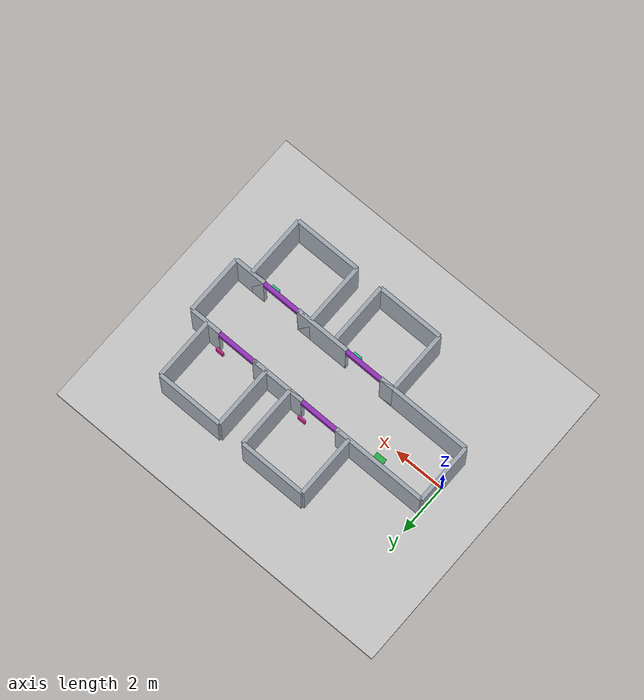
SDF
<sdf version="1.9">
  <world name="default">
    <plugin filename="gz-sim-physics-system" name="gz::sim::systems::Physics" />
    <plugin filename="gz-sim-user-commands-system" name="gz::sim::systems::UserCommands" />
    <plugin filename="gz-sim-sensors-system" name="gz::sim::systems::Sensors">
      <render_engine>ogre2</render_engine>
    </plugin>
    <plugin filename="gz-sim-imu-system" name="gz::sim::systems::Imu" />
    <plugin filename="gz-sim-contact-system" name="gz::sim::systems::Contact" />
    <physics name="3ms" type="ode">
      <max_step_size>0.003</max_step_size>
      <real_time_factor>1</real_time_factor>
    </physics>
    <light name="sun" type="directional">
      <pose>0 0 10 0 0 0</pose>
      <diffuse>0.9 0.9 0.9 1</diffuse>
      <direction>-0.5 0.1 -0.9</direction>
    </light>
    <model name="ground_plane">
      <static>true</static>
      <pose>5.05 0 -0.05 0 0 0</pose>
      <link name="body">
        <collision name="collision">
          <geometry>
            <box>
              <size>14.1 12 0.1</size>
            </box>
          </geometry>
        </collision>
        <visual name="visual">
          <geometry>
            <box>
              <size>14.1 12 0.1</size>
            </box>
          </geometry>
          <material>
            <ambient>0.8 0.8 0.8 1</ambient>
            <diffuse>0.8 0.8 0.8 1</diffuse>
          </material>
        </visual>
      </link>
    </model>
    <model name="start_wall">
      <static>true</static>
      <pose>0 0 1.1 0 0 0</pose>
      <link name="body">
        <collision name="collision">
          <geometry>
            <box>
              <size>0.15 2.3 2.2</size>
            </box>
          </geometry>
        </collision>
        <visual name="visual">
          <geometry>
            <box>
              <size>0.15 2.3 2.2</size>
            </box>
          </geometry>
          <material>
            <ambient>0.65 0.68 0.72 1</ambient>
            <diffuse>0.65 0.68 0.72 1</diffuse>
          </material>
        </visual>
      </link>
    </model>
    <model name="end_wall">
      <static>true</static>
      <pose>10.1 0 1.1 0 0 0</pose>
      <link name="body">
        <collision name="collision">
          <geometry>
            <box>
              <size>0.15 2.3 2.2</size>
            </box>
          </geometry>
        </collision>
        <visual name="visual">
          <geometry>
            <box>
              <size>0.15 2.3 2.2</size>
            </box>
          </geometry>
          <material>
            <ambient>0.65 0.68 0.72 1</ambient>
            <diffuse>0.65 0.68 0.72 1</diffuse>
          </material>
        </visual>
      </link>
    </model>
    <model name="hall_-1_1">
      <static>true</static>
      <pose>1.85 -1.15 1.1 0 0 0</pose>
      <link name="body">
        <collision name="collision">
          <geometry>
            <box>
              <size>3.7 0.15 2.2</size>
            </box>
          </geometry>
        </collision>
        <visual name="visual">
          <geometry>
            <box>
              <size>3.7 0.15 2.2</size>
            </box>
          </geometry>
          <material>
            <ambient>0.65 0.68 0.72 1</ambient>
            <diffuse>0.65 0.68 0.72 1</diffuse>
          </material>
        </visual>
      </link>
    </model>
    <model name="room_-1_1_-1">
      <static>true</static>
      <pose>3.1500000000000004 -2.3499999999999996 1.1 0 0 0</pose>
      <link name="body">
        <collision name="collision">
          <geometry>
            <box>
              <size>0.15 2.4 2.2</size>
            </box>
          </geometry>
        </collision>
        <visual name="visual">
          <geometry>
            <box>
              <size>0.15 2.4 2.2</size>
            </box>
          </geometry>
          <material>
            <ambient>0.65 0.68 0.72 1</ambient>
            <diffuse>0.65 0.68 0.72 1</diffuse>
          </material>
        </visual>
      </link>
    </model>
    <model name="room_-1_1_1">
      <static>true</static>
      <pose>5.75 -2.3499999999999996 1.1 0 0 0</pose>
      <link name="body">
        <collision name="collision">
          <geometry>
            <box>
              <size>0.15 2.4 2.2</size>
            </box>
          </geometry>
        </collision>
        <visual name="visual">
          <geometry>
            <box>
              <size>0.15 2.4 2.2</size>
            </box>
          </geometry>
          <material>
            <ambient>0.65 0.68 0.72 1</ambient>
            <diffuse>0.65 0.68 0.72 1</diffuse>
          </material>
        </visual>
      </link>
    </model>
    <model name="room_end_-1_1">
      <static>true</static>
      <pose>4.45 -3.55 1.1 0 0 0</pose>
      <link name="body">
        <collision name="collision">
          <geometry>
            <box>
              <size>2.6 0.15 2.2</size>
            </box>
          </geometry>
        </collision>
        <visual name="visual">
          <geometry>
            <box>
              <size>2.6 0.15 2.2</size>
            </box>
          </geometry>
          <material>
            <ambient>0.65 0.68 0.72 1</ambient>
            <diffuse>0.65 0.68 0.72 1</diffuse>
          </material>
        </visual>
      </link>
    </model>
    <model name="jamb_-1_1_-1">
      <static>true</static>
      <pose>3.4250000000000003 -1.15 1.1 0 0 0</pose>
      <link name="body">
        <collision name="collision">
          <geometry>
            <box>
              <size>0.55 0.15 2.2</size>
            </box>
          </geometry>
        </collision>
        <visual name="visual">
          <geometry>
            <box>
              <size>0.55 0.15 2.2</size>
            </box>
          </geometry>
          <material>
            <ambient>0.65 0.68 0.72 1</ambient>
            <diffuse>0.65 0.68 0.72 1</diffuse>
          </material>
        </visual>
      </link>
    </model>
    <model name="jamb_-1_1_1">
      <static>true</static>
      <pose>5.475 -1.15 1.1 0 0 0</pose>
      <link name="body">
        <collision name="collision">
          <geometry>
            <box>
              <size>0.55 0.15 2.2</size>
            </box>
          </geometry>
        </collision>
        <visual name="visual">
          <geometry>
            <box>
              <size>0.55 0.15 2.2</size>
            </box>
          </geometry>
          <material>
            <ambient>0.65 0.68 0.72 1</ambient>
            <diffuse>0.65 0.68 0.72 1</diffuse>
          </material>
        </visual>
      </link>
    </model>
    <model name="hall_-1_2">
      <static>true</static>
      <pose>6.275 -1.15 1.1 0 0 0</pose>
      <link name="body">
        <collision name="collision">
          <geometry>
            <box>
              <size>2.1499999999999995 0.15 2.2</size>
            </box>
          </geometry>
        </collision>
        <visual name="visual">
          <geometry>
            <box>
              <size>2.1499999999999995 0.15 2.2</size>
            </box>
          </geometry>
          <material>
            <ambient>0.65 0.68 0.72 1</ambient>
            <diffuse>0.65 0.68 0.72 1</diffuse>
          </material>
        </visual>
      </link>
    </model>
    <model name="room_-1_2_-1">
      <static>true</static>
      <pose>6.8 -2.3499999999999996 1.1 0 0 0</pose>
      <link name="body">
        <collision name="collision">
          <geometry>
            <box>
              <size>0.15 2.4 2.2</size>
            </box>
          </geometry>
        </collision>
        <visual name="visual">
          <geometry>
            <box>
              <size>0.15 2.4 2.2</size>
            </box>
          </geometry>
          <material>
            <ambient>0.65 0.68 0.72 1</ambient>
            <diffuse>0.65 0.68 0.72 1</diffuse>
          </material>
        </visual>
      </link>
    </model>
    <model name="room_-1_2_1">
      <static>true</static>
      <pose>9.4 -2.3499999999999996 1.1 0 0 0</pose>
      <link name="body">
        <collision name="collision">
          <geometry>
            <box>
              <size>0.15 2.4 2.2</size>
            </box>
          </geometry>
        </collision>
        <visual name="visual">
          <geometry>
            <box>
              <size>0.15 2.4 2.2</size>
            </box>
          </geometry>
          <material>
            <ambient>0.65 0.68 0.72 1</ambient>
            <diffuse>0.65 0.68 0.72 1</diffuse>
          </material>
        </visual>
      </link>
    </model>
    <model name="room_end_-1_2">
      <static>true</static>
      <pose>8.1 -3.55 1.1 0 0 0</pose>
      <link name="body">
        <collision name="collision">
          <geometry>
            <box>
              <size>2.6 0.15 2.2</size>
            </box>
          </geometry>
        </collision>
        <visual name="visual">
          <geometry>
            <box>
              <size>2.6 0.15 2.2</size>
            </box>
          </geometry>
          <material>
            <ambient>0.65 0.68 0.72 1</ambient>
            <diffuse>0.65 0.68 0.72 1</diffuse>
          </material>
        </visual>
      </link>
    </model>
    <model name="jamb_-1_2_-1">
      <static>true</static>
      <pose>7.074999999999999 -1.15 1.1 0 0 0</pose>
      <link name="body">
        <collision name="collision">
          <geometry>
            <box>
              <size>0.55 0.15 2.2</size>
            </box>
          </geometry>
        </collision>
        <visual name="visual">
          <geometry>
            <box>
              <size>0.55 0.15 2.2</size>
            </box>
          </geometry>
          <material>
            <ambient>0.65 0.68 0.72 1</ambient>
            <diffuse>0.65 0.68 0.72 1</diffuse>
          </material>
        </visual>
      </link>
    </model>
    <model name="jamb_-1_2_1">
      <static>true</static>
      <pose>9.125 -1.15 1.1 0 0 0</pose>
      <link name="body">
        <collision name="collision">
          <geometry>
            <box>
              <size>0.55 0.15 2.2</size>
            </box>
          </geometry>
        </collision>
        <visual name="visual">
          <geometry>
            <box>
              <size>0.55 0.15 2.2</size>
            </box>
          </geometry>
          <material>
            <ambient>0.65 0.68 0.72 1</ambient>
            <diffuse>0.65 0.68 0.72 1</diffuse>
          </material>
        </visual>
      </link>
    </model>
    <model name="hall_end_-1">
      <static>true</static>
      <pose>9.475 -1.15 1.1 0 0 0</pose>
      <link name="body">
        <collision name="collision">
          <geometry>
            <box>
              <size>1.25 0.15 2.2</size>
            </box>
          </geometry>
        </collision>
        <visual name="visual">
          <geometry>
            <box>
              <size>1.25 0.15 2.2</size>
            </box>
          </geometry>
          <material>
            <ambient>0.65 0.68 0.72 1</ambient>
            <diffuse>0.65 0.68 0.72 1</diffuse>
          </material>
        </visual>
      </link>
    </model>
    <model name="hall_1_1">
      <static>true</static>
      <pose>1.85 1.15 1.1 0 0 0</pose>
      <link name="body">
        <collision name="collision">
          <geometry>
            <box>
              <size>3.7 0.15 2.2</size>
            </box>
          </geometry>
        </collision>
        <visual name="visual">
          <geometry>
            <box>
              <size>3.7 0.15 2.2</size>
            </box>
          </geometry>
          <material>
            <ambient>0.65 0.68 0.72 1</ambient>
            <diffuse>0.65 0.68 0.72 1</diffuse>
          </material>
        </visual>
      </link>
    </model>
    <model name="room_1_1_-1">
      <static>true</static>
      <pose>3.1500000000000004 2.3499999999999996 1.1 0 0 0</pose>
      <link name="body">
        <collision name="collision">
          <geometry>
            <box>
              <size>0.15 2.4 2.2</size>
            </box>
          </geometry>
        </collision>
        <visual name="visual">
          <geometry>
            <box>
              <size>0.15 2.4 2.2</size>
            </box>
          </geometry>
          <material>
            <ambient>0.65 0.68 0.72 1</ambient>
            <diffuse>0.65 0.68 0.72 1</diffuse>
          </material>
        </visual>
      </link>
    </model>
    <model name="room_1_1_1">
      <static>true</static>
      <pose>5.75 2.3499999999999996 1.1 0 0 0</pose>
      <link name="body">
        <collision name="collision">
          <geometry>
            <box>
              <size>0.15 2.4 2.2</size>
            </box>
          </geometry>
        </collision>
        <visual name="visual">
          <geometry>
            <box>
              <size>0.15 2.4 2.2</size>
            </box>
          </geometry>
          <material>
            <ambient>0.65 0.68 0.72 1</ambient>
            <diffuse>0.65 0.68 0.72 1</diffuse>
          </material>
        </visual>
      </link>
    </model>
    <model name="room_end_1_1">
      <static>true</static>
      <pose>4.45 3.55 1.1 0 0 0</pose>
      <link name="body">
        <collision name="collision">
          <geometry>
            <box>
              <size>2.6 0.15 2.2</size>
            </box>
          </geometry>
        </collision>
        <visual name="visual">
          <geometry>
            <box>
              <size>2.6 0.15 2.2</size>
            </box>
          </geometry>
          <material>
            <ambient>0.65 0.68 0.72 1</ambient>
            <diffuse>0.65 0.68 0.72 1</diffuse>
          </material>
        </visual>
      </link>
    </model>
    <model name="jamb_1_1_-1">
      <static>true</static>
      <pose>3.4250000000000003 1.15 1.1 0 0 0</pose>
      <link name="body">
        <collision name="collision">
          <geometry>
            <box>
              <size>0.55 0.15 2.2</size>
            </box>
          </geometry>
        </collision>
        <visual name="visual">
          <geometry>
            <box>
              <size>0.55 0.15 2.2</size>
            </box>
          </geometry>
          <material>
            <ambient>0.65 0.68 0.72 1</ambient>
            <diffuse>0.65 0.68 0.72 1</diffuse>
          </material>
        </visual>
      </link>
    </model>
    <model name="jamb_1_1_1">
      <static>true</static>
      <pose>5.475 1.15 1.1 0 0 0</pose>
      <link name="body">
        <collision name="collision">
          <geometry>
            <box>
              <size>0.55 0.15 2.2</size>
            </box>
          </geometry>
        </collision>
        <visual name="visual">
          <geometry>
            <box>
              <size>0.55 0.15 2.2</size>
            </box>
          </geometry>
          <material>
            <ambient>0.65 0.68 0.72 1</ambient>
            <diffuse>0.65 0.68 0.72 1</diffuse>
          </material>
        </visual>
      </link>
    </model>
    <model name="hall_1_2">
      <static>true</static>
      <pose>6.275 1.15 1.1 0 0 0</pose>
      <link name="body">
        <collision name="collision">
          <geometry>
            <box>
              <size>2.1499999999999995 0.15 2.2</size>
            </box>
          </geometry>
        </collision>
        <visual name="visual">
          <geometry>
            <box>
              <size>2.1499999999999995 0.15 2.2</size>
            </box>
          </geometry>
          <material>
            <ambient>0.65 0.68 0.72 1</ambient>
            <diffuse>0.65 0.68 0.72 1</diffuse>
          </material>
        </visual>
      </link>
    </model>
    <model name="room_1_2_-1">
      <static>true</static>
      <pose>6.8 2.3499999999999996 1.1 0 0 0</pose>
      <link name="body">
        <collision name="collision">
          <geometry>
            <box>
              <size>0.15 2.4 2.2</size>
            </box>
          </geometry>
        </collision>
        <visual name="visual">
          <geometry>
            <box>
              <size>0.15 2.4 2.2</size>
            </box>
          </geometry>
          <material>
            <ambient>0.65 0.68 0.72 1</ambient>
            <diffuse>0.65 0.68 0.72 1</diffuse>
          </material>
        </visual>
      </link>
    </model>
    <model name="room_1_2_1">
      <static>true</static>
      <pose>9.4 2.3499999999999996 1.1 0 0 0</pose>
      <link name="body">
        <collision name="collision">
          <geometry>
            <box>
              <size>0.15 2.4 2.2</size>
            </box>
          </geometry>
        </collision>
        <visual name="visual">
          <geometry>
            <box>
              <size>0.15 2.4 2.2</size>
            </box>
          </geometry>
          <material>
            <ambient>0.65 0.68 0.72 1</ambient>
            <diffuse>0.65 0.68 0.72 1</diffuse>
          </material>
        </visual>
      </link>
    </model>
    <model name="room_end_1_2">
      <static>true</static>
      <pose>8.1 3.55 1.1 0 0 0</pose>
      <link name="body">
        <collision name="collision">
          <geometry>
            <box>
              <size>2.6 0.15 2.2</size>
            </box>
          </geometry>
        </collision>
        <visual name="visual">
          <geometry>
            <box>
              <size>2.6 0.15 2.2</size>
            </box>
          </geometry>
          <material>
            <ambient>0.65 0.68 0.72 1</ambient>
            <diffuse>0.65 0.68 0.72 1</diffuse>
          </material>
        </visual>
      </link>
    </model>
    <model name="jamb_1_2_-1">
      <static>true</static>
      <pose>7.074999999999999 1.15 1.1 0 0 0</pose>
      <link name="body">
        <collision name="collision">
          <geometry>
            <box>
              <size>0.55 0.15 2.2</size>
            </box>
          </geometry>
        </collision>
        <visual name="visual">
          <geometry>
            <box>
              <size>0.55 0.15 2.2</size>
            </box>
          </geometry>
          <material>
            <ambient>0.65 0.68 0.72 1</ambient>
            <diffuse>0.65 0.68 0.72 1</diffuse>
          </material>
        </visual>
      </link>
    </model>
    <model name="jamb_1_2_1">
      <static>true</static>
      <pose>9.125 1.15 1.1 0 0 0</pose>
      <link name="body">
        <collision name="collision">
          <geometry>
            <box>
              <size>0.55 0.15 2.2</size>
            </box>
          </geometry>
        </collision>
        <visual name="visual">
          <geometry>
            <box>
              <size>0.55 0.15 2.2</size>
            </box>
          </geometry>
          <material>
            <ambient>0.65 0.68 0.72 1</ambient>
            <diffuse>0.65 0.68 0.72 1</diffuse>
          </material>
        </visual>
      </link>
    </model>
    <model name="hall_end_1">
      <static>true</static>
      <pose>9.475 1.15 1.1 0 0 0</pose>
      <link name="body">
        <collision name="collision">
          <geometry>
            <box>
              <size>1.25 0.15 2.2</size>
            </box>
          </geometry>
        </collision>
        <visual name="visual">
          <geometry>
            <box>
              <size>1.25 0.15 2.2</size>
            </box>
          </geometry>
          <material>
            <ambient>0.65 0.68 0.72 1</ambient>
            <diffuse>0.65 0.68 0.72 1</diffuse>
          </material>
        </visual>
      </link>
    </model>
    <model name="chair_seat">
      <static>true</static>
      <pose>2.2 0.7499999999999999 0.4 0 0 0</pose>
      <link name="body">
        <collision name="collision">
          <geometry>
            <box>
              <size>0.42 0.42 0.08</size>
            </box>
          </geometry>
        </collision>
        <visual name="visual">
          <geometry>
            <box>
              <size>0.42 0.42 0.08</size>
            </box>
          </geometry>
          <material>
            <ambient>0.16 0.71 0.27 1</ambient>
            <diffuse>0.16 0.71 0.27 1</diffuse>
          </material>
        </visual>
      </link>
    </model>
    <model name="chair_back">
      <static>true</static>
      <pose>2.2 0.94 0.67 0 0 0</pose>
      <link name="body">
        <collision name="collision">
          <geometry>
            <box>
              <size>0.42 0.05 0.5</size>
            </box>
          </geometry>
        </collision>
        <visual name="visual">
          <geometry>
            <box>
              <size>0.42 0.05 0.5</size>
            </box>
          </geometry>
          <material>
            <ambient>0.16 0.71 0.27 1</ambient>
            <diffuse>0.16 0.71 0.27 1</diffuse>
          </material>
        </visual>
      </link>
    </model>
    <model name="chair_leg_-0.16_-0.16">
      <static>true</static>
      <pose>2.04 0.5899999999999999 0.19 0 0 0</pose>
      <link name="body">
        <collision name="collision">
          <geometry>
            <box>
              <size>0.04 0.04 0.38</size>
            </box>
          </geometry>
        </collision>
        <visual name="visual">
          <geometry>
            <box>
              <size>0.04 0.04 0.38</size>
            </box>
          </geometry>
          <material>
            <ambient>0.2 0.2 0.2 1</ambient>
            <diffuse>0.2 0.2 0.2 1</diffuse>
          </material>
        </visual>
      </link>
    </model>
    <model name="chair_leg_-0.16_0.16">
      <static>true</static>
      <pose>2.04 0.9099999999999999 0.19 0 0 0</pose>
      <link name="body">
        <collision name="collision">
          <geometry>
            <box>
              <size>0.04 0.04 0.38</size>
            </box>
          </geometry>
        </collision>
        <visual name="visual">
          <geometry>
            <box>
              <size>0.04 0.04 0.38</size>
            </box>
          </geometry>
          <material>
            <ambient>0.2 0.2 0.2 1</ambient>
            <diffuse>0.2 0.2 0.2 1</diffuse>
          </material>
        </visual>
      </link>
    </model>
    <model name="chair_leg_0.16_-0.16">
      <static>true</static>
      <pose>2.3600000000000003 0.5899999999999999 0.19 0 0 0</pose>
      <link name="body">
        <collision name="collision">
          <geometry>
            <box>
              <size>0.04 0.04 0.38</size>
            </box>
          </geometry>
        </collision>
        <visual name="visual">
          <geometry>
            <box>
              <size>0.04 0.04 0.38</size>
            </box>
          </geometry>
          <material>
            <ambient>0.2 0.2 0.2 1</ambient>
            <diffuse>0.2 0.2 0.2 1</diffuse>
          </material>
        </visual>
      </link>
    </model>
    <model name="chair_leg_0.16_0.16">
      <static>true</static>
      <pose>2.3600000000000003 0.9099999999999999 0.19 0 0 0</pose>
      <link name="body">
        <collision name="collision">
          <geometry>
            <box>
              <size>0.04 0.04 0.38</size>
            </box>
          </geometry>
        </collision>
        <visual name="visual">
          <geometry>
            <box>
              <size>0.04 0.04 0.38</size>
            </box>
          </geometry>
          <material>
            <ambient>0.2 0.2 0.2 1</ambient>
            <diffuse>0.2 0.2 0.2 1</diffuse>
          </material>
        </visual>
      </link>
    </model>
    <model name="r3geo_base_r003_right_1_lintel">
      <static>true</static>
      <pose>4.45 -1.15 1.95 0 0 0</pose>
      <link name="body">
        <collision name="collision">
          <geometry>
            <box>
              <size>1.5 0.16 0.25</size>
            </box>
          </geometry>
        </collision>
        <visual name="visual">
          <geometry>
            <box>
              <size>1.5 0.16 0.25</size>
            </box>
          </geometry>
          <material>
            <ambient>0.6 0.2 0.75 1</ambient>
            <diffuse>0.6 0.2 0.75 1</diffuse>
          </material>
        </visual>
      </link>
    </model>
    <model name="r3geo_base_r003_right_1_entrance_sign">
      <static>true</static>
      <pose>4.98 -1.45 1.05 0 0 0</pose>
      <link name="body">
        <visual name="visual">
          <geometry>
            <box>
              <size>0.32 0.08 0.32</size>
            </box>
          </geometry>
          <material>
            <ambient>0.16 0.8 0.61 1</ambient>
            <diffuse>0.16 0.8 0.61 1</diffuse>
          </material>
        </visual>
      </link>
    </model>
    <model name="r3geo_base_r003_right_2_lintel">
      <static>true</static>
      <pose>8.1 -1.15 1.95 0 0 0</pose>
      <link name="body">
        <collision name="collision">
          <geometry>
            <box>
              <size>1.5 0.16 0.25</size>
            </box>
          </geometry>
        </collision>
        <visual name="visual">
          <geometry>
            <box>
              <size>1.5 0.16 0.25</size>
            </box>
          </geometry>
          <material>
            <ambient>0.6 0.2 0.75 1</ambient>
            <diffuse>0.6 0.2 0.75 1</diffuse>
          </material>
        </visual>
      </link>
    </model>
    <model name="r3geo_base_r003_right_2_entrance_sign">
      <static>true</static>
      <pose>8.629999999999999 -1.45 1.05 0 0 0</pose>
      <link name="body">
        <visual name="visual">
          <geometry>
            <box>
              <size>0.32 0.08 0.32</size>
            </box>
          </geometry>
          <material>
            <ambient>0.16 0.8 0.61 1</ambient>
            <diffuse>0.16 0.8 0.61 1</diffuse>
          </material>
        </visual>
      </link>
    </model>
    <model name="r3geo_base_r003_left_1_lintel">
      <static>true</static>
      <pose>4.45 1.15 1.95 0 0 0</pose>
      <link name="body">
        <collision name="collision">
          <geometry>
            <box>
              <size>1.5 0.16 0.25</size>
            </box>
          </geometry>
        </collision>
        <visual name="visual">
          <geometry>
            <box>
              <size>1.5 0.16 0.25</size>
            </box>
          </geometry>
          <material>
            <ambient>0.6 0.2 0.75 1</ambient>
            <diffuse>0.6 0.2 0.75 1</diffuse>
          </material>
        </visual>
      </link>
    </model>
    <model name="r3geo_base_r003_left_1_entrance_sign">
      <static>true</static>
      <pose>4.98 1.45 1.05 0 0 0</pose>
      <link name="body">
        <visual name="visual">
          <geometry>
            <box>
              <size>0.32 0.08 0.32</size>
            </box>
          </geometry>
          <material>
            <ambient>0.84 0.18 0.57 1</ambient>
            <diffuse>0.84 0.18 0.57 1</diffuse>
          </material>
        </visual>
      </link>
    </model>
    <model name="r3geo_base_r003_left_2_lintel">
      <static>true</static>
      <pose>8.1 1.15 1.95 0 0 0</pose>
      <link name="body">
        <collision name="collision">
          <geometry>
            <box>
              <size>1.5 0.16 0.25</size>
            </box>
          </geometry>
        </collision>
        <visual name="visual">
          <geometry>
            <box>
              <size>1.5 0.16 0.25</size>
            </box>
          </geometry>
          <material>
            <ambient>0.6 0.2 0.75 1</ambient>
            <diffuse>0.6 0.2 0.75 1</diffuse>
          </material>
        </visual>
      </link>
    </model>
    <model name="r3geo_base_r003_left_2_entrance_sign">
      <static>true</static>
      <pose>8.629999999999999 1.45 1.05 0 0 0</pose>
      <link name="body">
        <visual name="visual">
          <geometry>
            <box>
              <size>0.32 0.08 0.32</size>
            </box>
          </geometry>
          <material>
            <ambient>0.84 0.18 0.57 1</ambient>
            <diffuse>0.84 0.18 0.57 1</diffuse>
          </material>
        </visual>
      </link>
    </model>
  </world>
</sdf>
